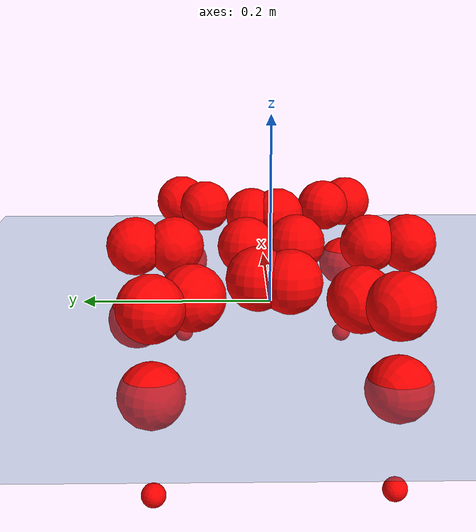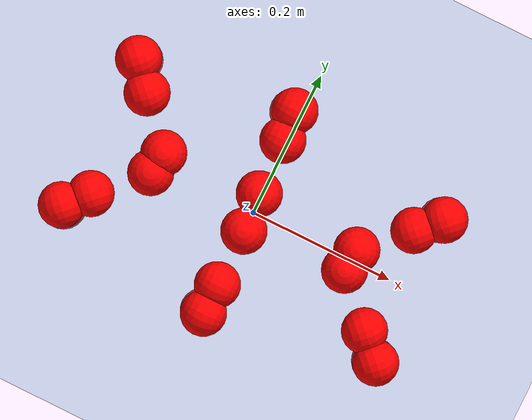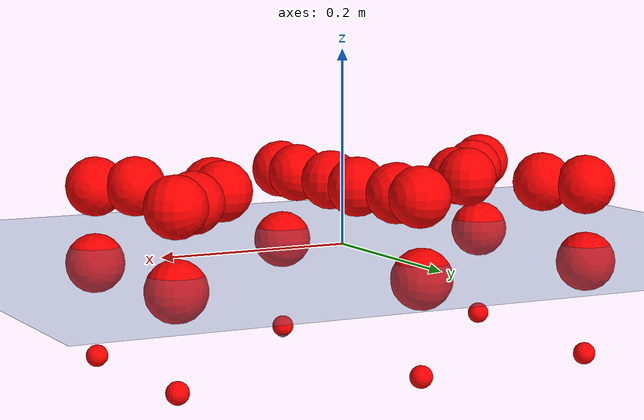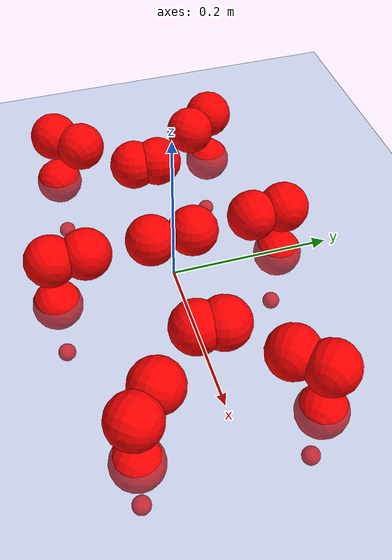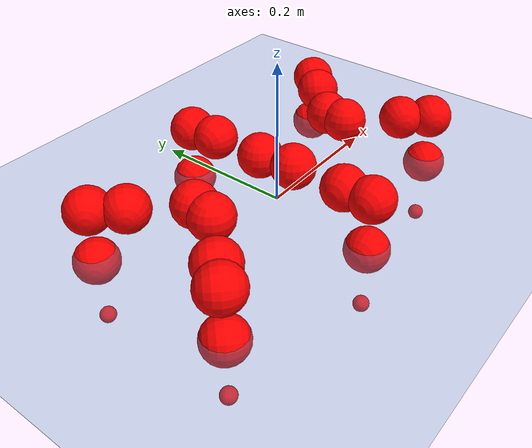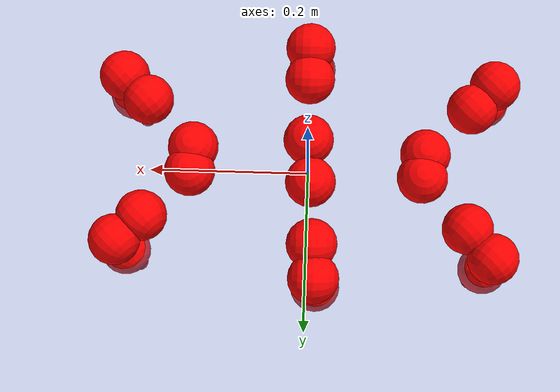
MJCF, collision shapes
<mujoco model="Golem">
  <compiler angle="radian" assetdir="assets" balanceinertia="true" inertiafromgeom="false"/>

  <option timestep="0.005" density="1.2" viscosity="2e-05"/>

  <size nkey="1"/>

  <visual>
    <quality shadowsize="8192"/>
    <map shadowclip="0.5"/>
  </visual>

  <default>
    <default class="/">
      <joint armature="0.01" damping="0.01" frictionloss="0.01"/>
      <geom contype="0" conaffinity="0" group="1" solref="-1000 -80"/>
      <site size="0.01 0.005 0.005" group="5"/>
      <general forcelimited="true" biastype="affine" gainprm="25" biasprm="0 -25 -0.5"/>
      <default class="visual">
        <geom type="mesh" group="2"/>
      </default>
      <default class="collision">
        <geom group="3"/>
      </default>
      <default class="foot">
        <geom size="0.01 0 0" condim="6" group="4" priority="1" solimp="0.015 1 0.01"/>
      </default>
      <default class="reward_collision_sphere">
        <geom group="5" rgba="1 0 0 1"/>
      </default>
    </default>
  </default>

  <asset>
    <texture type="skybox" colorspace="auto" name="//unnamed_texture_0" builtin="gradient" rgb1="0.95 0.95 0.95" rgb2="0.95 0.95 0.95" width="100" height="600"/>
    <texture type="2d" colorspace="auto" name="texplane" builtin="checker" rgb1="0.345 0.575 0.748" rgb2="0.345 0.575 0.748" markrgb="1 1 1" width="512" height="512"/>
    <material name="MatPlane" class="/" texture="texplane" texuniform="true" texrepeat="2 2" specular="0.9"/>
    <mesh name="body" class="/" file="body.stl" scale="0.001 0.001 0.001"/>
    <mesh name="coxa" class="/" file="coxa.stl" scale="0.001 0.001 0.001"/>
    <mesh name="femur" class="/" file="femur.stl" scale="0.001 0.001 0.001"/>
    <mesh name="tibia" class="/" file="tibia.stl" scale="0.001 0.001 0.001"/>
    <mesh name="tarsus" class="/" file="tarsus.stl" scale="0.001 0.001 0.001"/>
  </asset>

  <worldbody>
    <geom name="floor" class="/" size="100 100 0.125" type="plane" group="0" material="MatPlane"/>
    <light name="toplight_shadow" class="/" pos="0 0 5" dir="0.0990148 0.0990148 -0.990148" type="directional" ambient="0.04 0.04 0.04" diffuse="0.55 0.55 0.55" specular="0.12 0.12 0.12"/>
    <light name="toplight_fill" class="/" pos="0 0 5" dir="0.0990148 0.0990148 -0.990148" type="directional" castshadow="false" ambient="0.04 0.04 0.04" diffuse="0.3 0.3 0.3" specular="0.08 0.08 0.08"/>
    <body name="trunk" pos="-0.000150404 8.95235e-05 -0.00105267" quat="0.999999 -0.000103296 0.000245758 -0.00127578">
      <inertial pos="-0.000612099 -0.000879668 -0.00300232" quat="1 -0.000350835 -0.000267071 0.000503979" mass="1.71709" diaginertia="0.00573158 9.71267e-05 0.0100128"/>
      <joint name="//unnamed_joint_0" type="free"/>
      <geom name="//unnamed_geom_1" class="/" pos="0 0 0.0641454" quat="1 0 0 0" type="mesh" rgba="0.9 0.9 0.9 1" mesh="body"/>
      <site name="imu" class="/" pos="0.129455 -0.00406882 0.0990321" size="0.00765229"/>
      <camera name="track" class="/" pos="0 -0.794135 0" quat="0.707107 0.707107 0 0" mode="trackcom"/>
      <camera name="ego_camera" class="/" pos="0.116525 0 0.100227" quat="-0.5 -0.5 0.5 0.5"/>
      <body name="coxa_RR" pos="-0.16101 -0.0318566 0.0631625" quat="0.382322 -0.00117267 -0.000459226 -0.924028">
        <inertial pos="0.000378875 -0.000272025 0.00249567" quat="0.99998 0.00158146 0.00334533 0.00516353" mass="0.0930825" diaginertia="0.00594097 0.000101546 0.0103115"/>
        <joint name="coxa_joint_RR" class="/" pos="0 0 0" axis="0.00184242 -0.00281678 -0.999994" range="-3.17836 3.08801" armature="0.00766838" damping="0.00608141" frictionloss="0.00799401"/>
        <geom name="//unnamed_geom_2" class="/" type="mesh" rgba="0.2 0.2 0.2 1" mesh="coxa"/>
        <geom name="//unnamed_geom_3" class="reward_collision_sphere" size="0.0306092" pos="-0.0268905 0 0"/>
        <body name="femur_RR" pos="0.0550873 0.00148209 -0.000239284" quat="0.499791 -0.500031 0.500373 0.499805">
          <inertial pos="-0.000165852 -0.000526367 0.00120482" quat="0.999998 0.0017752 -0.000422544 -0.00010374" mass="0.0899735" diaginertia="0.0057769 9.89896e-05 0.0101999"/>
          <joint name="femur_joint_RR" class="/" pos="0 0 0" axis="-0.00155579 -0.00163795 -0.999997" range="-3.08962 3.14803" armature="0.00671935" damping="0" frictionloss="0.00800476"/>
          <geom name="//unnamed_geom_4" class="/" type="mesh" rgba="0.9 0.9 0.9 1" mesh="femur"/>
          <geom name="//unnamed_geom_5" class="reward_collision_sphere" size="0.0306092"/>
          <body name="tibia_RR" pos="-0.00236213 -0.0410617 0.00161914" quat="0.000201215 1 0.000769477 5.72452e-05">
            <inertial pos="0.00211918 0.00121783 8.09899e-05" quat="0.999999 -0.00107788 -8.529e-05 -0.00101746" mass="0.0920031" diaginertia="0.00584841 9.90042e-05 0.00983137"/>
            <joint name="tibia_joint_RR" class="/" pos="0 0 0" axis="0.0106265 -0.00597618 0.999926" range="-3.08842 3.14823" armature="0.00688975" damping="0" frictionloss="0.00790717"/>
            <geom name="//unnamed_geom_6" class="/" type="mesh" rgba="0.2 0.2 0.2 1" mesh="tibia"/>
            <geom name="//unnamed_geom_7" class="reward_collision_sphere" size="0.0306092"/>
            <body name="tarsus_RR" pos="0.076168 0.00136493 -0.00145803" quat="1 0.000179224 0.000125198 7.87896e-05">
              <inertial pos="0.0534399 0.00109082 -0.00118216" quat="0.498669 0.501048 0.499182 0.501096" mass="0.0907787" diaginertia="0.00584508 9.84117e-05 0.0103206"/>
              <joint name="tarsus_joint_RR" class="/" pos="0 0 0" axis="-0.00572247 0.00722795 0.999958" range="-3.14003 3.14937" armature="0.00813397" damping="0" frictionloss="0.00732146"/>
              <geom name="//unnamed_geom_8" class="/" type="mesh" rgba="0.9 0.9 0.9 1" mesh="tarsus"/>
              <geom name="foot_1" class="foot" size="0.00735909" pos="0.100391 0 0" quat="0 -0.707107 0 0.707107"/>
              <geom name="//unnamed_geom_10" class="reward_collision_sphere" size="0.0306092"/>
              <geom name="//unnamed_geom_11" class="reward_collision_sphere" size="0.0114784" pos="0.0963575 0 0"/>
              <site name="foot_1" class="foot" pos="0.100391 0 0" quat="0 -0.707107 0 0.707107" size="0.00765229"/>
            </body>
          </body>
        </body>
      </body>
      <body name="coxa_RM" pos="-0.00016429 -0.0536877 0.0646771" quat="0.706773 -0.000548162 0.00103021 -0.70744">
        <inertial pos="0.000585587 -0.00223809 0.000896606" quat="0.999999 0.000498928 -0.00133731 -0.000416936" mass="0.0880865" diaginertia="0.0056717 9.92617e-05 0.010192"/>
        <joint name="coxa_joint_RM" class="/" pos="0 0 0" axis="0.00768203 -0.0104285 -0.999916" range="-3.13591 3.18118" armature="0.00863273" damping="0" frictionloss="0.00703497"/>
        <geom name="//unnamed_geom_12" class="/" type="mesh" rgba="0.2 0.2 0.2 1" mesh="coxa"/>
        <geom name="//unnamed_geom_13" class="reward_collision_sphere" size="0.0306092" pos="-0.0268905 0 0"/>
        <body name="femur_RM" pos="0.0506938 0.000476673 -0.000220312" quat="0.500144 -0.500004 0.500054 0.499798">
          <inertial pos="0.00114735 -0.00123013 3.61157e-05" quat="0.999986 0.00171844 0.00493385 -0.000579147" mass="0.091475" diaginertia="0.00572406 0.000101212 0.0103637"/>
          <joint name="femur_joint_RM" class="/" pos="0 0 0" axis="-0.00237023 0.00135116 -0.999996" range="-3.14485 3.12737" armature="0.00745815" damping="0.00753242" frictionloss="0.00818703"/>
          <geom name="//unnamed_geom_14" class="/" type="mesh" rgba="0.9 0.9 0.9 1" mesh="femur"/>
          <geom name="//unnamed_geom_15" class="reward_collision_sphere" size="0.0306092"/>
          <body name="tibia_RM" pos="-0.000303524 -0.0409038 0.000273512" quat="9.28105e-05 1 -6.71351e-05 -6.95299e-05">
            <inertial pos="-0.000359344 -0.00189932 -0.00239925" quat="0.999936 -0.00480539 -0.00921733 0.00447091" mass="0.0895218" diaginertia="0.00599653 9.98602e-05 0.0104459"/>
            <joint name="tibia_joint_RM" class="/" pos="0 0 0" axis="0.000295027 -0.00109555 0.999999" stiffness="0.000236153" range="-3.15689 3.14305" armature="0.00852437" damping="0.00283404" frictionloss="0.00864842"/>
            <geom name="//unnamed_geom_16" class="/" type="mesh" rgba="0.2 0.2 0.2 1" mesh="tibia"/>
            <geom name="//unnamed_geom_17" class="reward_collision_sphere" size="0.0306092"/>
            <body name="tarsus_RM" pos="0.077621 0.000237242 0.00172688" quat="1 8.09918e-05 4.27974e-05 0.000139821">
              <inertial pos="0.0553088 0.00103925 0.000301236" quat="0.49852 0.505228 0.49536 0.50084" mass="0.0886338" diaginertia="0.00580344 9.84602e-05 0.00995977"/>
              <joint name="tarsus_joint_RM" class="/" pos="0 0 0" axis="-0.000322869 0.000491233 1" range="-3.08826 3.14297" armature="0.00869836" damping="0.00113777" frictionloss="0.00786093"/>
              <geom name="//unnamed_geom_18" class="/" type="mesh" rgba="0.9 0.9 0.9 1" mesh="tarsus"/>
              <geom name="foot_2" class="foot" size="0.00841427" pos="0.100391 0 0" quat="0 -0.707107 0 0.707107"/>
              <geom name="//unnamed_geom_20" class="reward_collision_sphere" size="0.0306092"/>
              <geom name="//unnamed_geom_21" class="reward_collision_sphere" size="0.0114784" pos="0.0963575 0 0"/>
              <site name="foot_2" class="foot" pos="0.100391 0 0" quat="0 -0.707107 0 0.707107" size="0.00765229"/>
            </body>
          </body>
        </body>
      </body>
      <body name="coxa_RF" pos="0.158222 -0.0327753 0.0657263" quat="0.923918 0.000132523 -0.000141341 -0.382591">
        <inertial pos="-0.00146571 -0.00272176 0.00159197" quat="0.999967 0.000538423 -0.00432141 -0.00680265" mass="0.0903724" diaginertia="0.00587799 9.71648e-05 0.0100865"/>
        <joint name="coxa_joint_RF" class="/" pos="0 0 0" axis="0.00126129 -0.00202228 -0.999997" range="-3.13412 3.18861" armature="0.00725179" damping="0" frictionloss="0.00777545"/>
        <geom name="//unnamed_geom_22" class="/" type="mesh" rgba="0.2 0.2 0.2 1" mesh="coxa"/>
        <geom name="//unnamed_geom_23" class="reward_collision_sphere" size="0.0306092" pos="-0.0268905 0 0"/>
        <body name="femur_RF" pos="0.0558807 -0.000422659 -0.00165102" quat="0.499684 -0.499564 0.499725 0.501025">
          <inertial pos="0.00070231 -0.00202876 0.00258218" quat="0.999918 0.0104683 -0.00603684 0.00416191" mass="0.0909902" diaginertia="0.00571811 9.57339e-05 0.0102625"/>
          <joint name="femur_joint_RF" class="/" pos="0 0 0" axis="-0.00131634 0.00297515 -0.999995" range="-3.10962 3.13738" armature="0.00744944" damping="0" frictionloss="0.00670775"/>
          <geom name="//unnamed_geom_24" class="/" type="mesh" rgba="0.9 0.9 0.9 1" mesh="femur"/>
          <geom name="//unnamed_geom_25" class="reward_collision_sphere" size="0.0306092"/>
          <body name="tibia_RF" pos="0.00161787 -0.0441967 0.000610491" quat="5.08725e-05 1 0.000234762 -0.000917054">
            <inertial pos="-0.000356711 0.00103044 0.000502628" quat="0.999976 -0.00467151 0.00337882 -0.00395682" mass="0.090322" diaginertia="0.00583879 9.97326e-05 0.010366"/>
            <joint name="tibia_joint_RF" class="/" pos="0 0 0" axis="-0.00327944 0.00977366 0.999947" range="-3.11756 3.13733" armature="0.00791268" damping="0.00352496" frictionloss="0.00762097"/>
            <geom name="//unnamed_geom_26" class="/" type="mesh" rgba="0.2 0.2 0.2 1" mesh="tibia"/>
            <geom name="//unnamed_geom_27" class="reward_collision_sphere" size="0.0306092"/>
            <body name="tarsus_RF" pos="0.0787591 0.00125698 -0.000571684" quat="0.999999 0.00112232 -0.000380832 -0.000477691">
              <inertial pos="0.0512171 -0.000293714 0.00260101" quat="0.503117 0.493443 0.498618 0.504744" mass="0.0860404" diaginertia="0.00577702 9.62883e-05 0.00985519"/>
              <joint name="tarsus_joint_RF" class="/" pos="0 0 0" axis="0.0115311 0.00938202 0.999889" range="-3.08837 3.11655" armature="0.00767467" damping="0" frictionloss="0.00818126"/>
              <geom name="//unnamed_geom_28" class="/" type="mesh" rgba="0.9 0.9 0.9 1" mesh="tarsus"/>
              <geom name="foot_3" class="foot" size="0.00744416" pos="0.100391 0 0" quat="0 -0.707107 0 0.707107"/>
              <geom name="//unnamed_geom_30" class="reward_collision_sphere" size="0.0306092"/>
              <geom name="//unnamed_geom_31" class="reward_collision_sphere" size="0.0114784" pos="0.0963575 0 0"/>
              <site name="foot_3" class="foot" pos="0.100391 0 0" quat="0 -0.707107 0 0.707107" size="0.00765229"/>
            </body>
          </body>
        </body>
      </body>
      <body name="coxa_LR" pos="-0.157216 0.03619 0.0651038" quat="0.38194 3.29686e-05 -0.000979859 0.924187">
        <inertial pos="0.00279245 0.000420349 -9.94777e-05" quat="0.999955 0.00586331 0.00569931 0.00486503" mass="0.0885014" diaginertia="0.00571664 9.78397e-05 0.0100245"/>
        <joint name="coxa_joint_LR" class="/" pos="0 0 0" axis="-0.0104079 -0.00271336 -0.999942" range="-3.11843 3.14234" armature="0.00780206" damping="0.00794383" frictionloss="0.00759618"/>
        <geom name="//unnamed_geom_32" class="/" type="mesh" rgba="0.2 0.2 0.2 1" mesh="coxa"/>
        <geom name="//unnamed_geom_33" class="reward_collision_sphere" size="0.0306092" pos="-0.0268905 0 0"/>
        <body name="femur_LR" pos="0.0539403 -0.00426455 -0.00203896" quat="0.498922 -0.50075 0.499987 0.500339">
          <inertial pos="-0.00098632 5.72678e-05 0.000565113" quat="1 0.000459517 -3.07874e-05 0.000820356" mass="0.0901462" diaginertia="0.00576551 9.82812e-05 0.0101"/>
          <joint name="femur_joint_LR" class="/" pos="0 0 0" axis="-0.000251994 1.83362e-06 1" range="-3.13558 3.191" armature="0.00759074" damping="0" frictionloss="0.00864983"/>
          <geom name="//unnamed_geom_34" class="/" type="mesh" rgba="0.9 0.9 0.9 1" mesh="femur"/>
          <geom name="//unnamed_geom_35" class="reward_collision_sphere" size="0.0306092"/>
          <body name="tibia_LR" pos="0.000825375 -0.0457042 -0.00386426" quat="0.000151514 1 -9.30854e-05 4.23417e-05">
            <inertial pos="-0.000674184 -0.00139891 0.0015656" quat="0.999987 0.00223198 -0.00349515 -0.00313045" mass="0.0900706" diaginertia="0.0058459 0.000101765 0.010217"/>
            <joint name="tibia_joint_LR" class="/" pos="0 0 0" axis="-0.000775424 -0.00151254 -0.999999" range="-3.15887 3.09144" armature="0.00670768" damping="0.000419865" frictionloss="0.00748861"/>
            <geom name="//unnamed_geom_36" class="/" type="mesh" rgba="0.2 0.2 0.2 1" mesh="tibia"/>
            <geom name="//unnamed_geom_37" class="reward_collision_sphere" size="0.0306092"/>
            <body name="tarsus_LR" pos="0.0795042 0.00140714 -0.000243248" quat="1 0.000266135 0.000565168 9.19503e-05">
              <inertial pos="0.0549487 0.000141044 0.000783096" quat="0.499831 0.499867 0.502048 0.498246" mass="0.0881531" diaginertia="0.00572431 9.80772e-05 0.010035"/>
              <joint name="tarsus_joint_LR" class="/" pos="0 0 0" axis="-0.000309865 -0.000244651 -1" range="-3.08896 3.13756" armature="0.00775364" damping="0" frictionloss="0.00744504"/>
              <geom name="//unnamed_geom_38" class="/" type="mesh" rgba="0.9 0.9 0.9 1" mesh="tarsus"/>
              <geom name="foot_4" class="foot" size="0.00698061" pos="0.100391 0 0" quat="0.707107 0 -0.707107 0"/>
              <geom name="//unnamed_geom_40" class="reward_collision_sphere" size="0.0306092"/>
              <geom name="//unnamed_geom_41" class="reward_collision_sphere" size="0.0114784" pos="0.0963575 0 0"/>
              <site name="foot_4" class="foot" pos="0.100391 0 0" quat="0.707107 0 -0.707107 0" size="0.00765229"/>
            </body>
          </body>
        </body>
      </body>
      <body name="coxa_LM" pos="-0.0039182 0.0521986 0.0629837" quat="0.70626 0.000421231 -0.000762177 0.707952">
        <inertial pos="0.000817821 6.24796e-05 0.00183617" quat="1 -8.23381e-05 -0.00025579 0.000389491" mass="0.0934093" diaginertia="0.00616865 0.000101856 0.0104321"/>
        <joint name="coxa_joint_LM" class="/" pos="0 0 0" axis="-0.00149649 0.00117701 -0.999998" stiffness="0.00585892" range="-3.18091 3.15697" armature="0.00707326" damping="0.00641025" frictionloss="0.00840364"/>
        <geom name="//unnamed_geom_42" class="/" type="mesh" rgba="0.2 0.2 0.2 1" mesh="coxa"/>
        <geom name="//unnamed_geom_43" class="reward_collision_sphere" size="0.0306092" pos="-0.0268905 0 0"/>
        <body name="femur_LM" pos="0.0487292 0.00339151 0.00138284" quat="0.500012 -0.499951 0.499997 0.500041">
          <inertial pos="0.000185383 -0.00164753 0.000572319" quat="0.99999 -0.0031875 -0.00272167 -0.00125121" mass="0.0849238" diaginertia="0.00566618 9.60679e-05 0.00985378"/>
          <joint name="femur_joint_LM" class="/" pos="0 0 0" axis="-0.00459013 0.00129108 0.999989" range="-3.16057 3.13574" armature="0.00750896" damping="0" frictionloss="0.00808469"/>
          <geom name="//unnamed_geom_44" class="/" type="mesh" rgba="0.9 0.9 0.9 1" mesh="femur"/>
          <geom name="//unnamed_geom_45" class="reward_collision_sphere" size="0.0306092"/>
          <body name="tibia_LM" pos="-0.000405037 -0.0410455 0.0028797" quat="-0.000151742 1 -1.8134e-05 3.31252e-05">
            <inertial pos="-0.00255358 0.000745882 -0.0002505" quat="1 -0.000292066 -0.000125204 0.000203019" mass="0.0907261" diaginertia="0.00556644 9.80155e-05 0.0100093"/>
            <joint name="tibia_joint_LM" class="/" pos="0 0 0" axis="0.000954472 0.00138193 -0.999999" range="-3.1057 3.14034" armature="0.00772257" damping="0.00364876" frictionloss="0.00739923"/>
            <geom name="//unnamed_geom_46" class="/" type="mesh" rgba="0.2 0.2 0.2 1" mesh="tibia"/>
            <geom name="//unnamed_geom_47" class="reward_collision_sphere" size="0.0306092"/>
            <body name="tarsus_LM" pos="0.0802271 6.14627e-05 -0.0024255" quat="1 -9.72379e-05 -0.000234579 0.000135571">
              <inertial pos="0.0534205 0.000730637 -0.000128836" quat="0.499978 0.50005 0.500359 0.499612" mass="0.0875846" diaginertia="0.00574128 9.7735e-05 0.0102842"/>
              <joint name="tarsus_joint_LM" class="/" pos="0 0 0" axis="-0.00328057 -0.00711 -0.999969" range="-3.15762 3.10582" armature="0.0076304" damping="0.0112981" frictionloss="0.00685912"/>
              <geom name="//unnamed_geom_48" class="/" type="mesh" rgba="0.9 0.9 0.9 1" mesh="tarsus"/>
              <geom name="foot_5" class="foot" size="0.00748205" pos="0.100391 0 0" quat="0.707107 0 -0.707107 0"/>
              <geom name="//unnamed_geom_50" class="reward_collision_sphere" size="0.0306092"/>
              <geom name="//unnamed_geom_51" class="reward_collision_sphere" size="0.0114784" pos="0.0963575 0 0"/>
              <site name="foot_5" class="foot" pos="0.100391 0 0" quat="0.707107 0 -0.707107 0" size="0.00765229"/>
            </body>
          </body>
        </body>
      </body>
      <body name="coxa_LF" pos="0.160809 0.0355066 0.0655034" quat="0.923858 0.000203095 0.000180407 0.382735">
        <inertial pos="0.000456798 -0.0014461 0.000210008" quat="0.999986 -0.00396631 0.00077215 -0.00337961" mass="0.0879363" diaginertia="0.00563702 9.36797e-05 0.00989138"/>
        <joint name="coxa_joint_LF" class="/" pos="0 0 0" axis="-0.00560169 -0.00690656 -0.99996" range="-3.16764 3.15141" armature="0.00750888" damping="0" frictionloss="0.00779374"/>
        <geom name="//unnamed_geom_52" class="/" type="mesh" rgba="0.2 0.2 0.2 1" mesh="coxa"/>
        <geom name="//unnamed_geom_53" class="reward_collision_sphere" size="0.0306092" pos="-0.0268905 0 0"/>
        <body name="femur_LF" pos="0.0513994 0.000718084 -0.00186608" quat="0.500067 -0.500283 0.499617 0.500034">
          <inertial pos="-0.000624692 0.000785845 0.000416843" quat="0.999915 0.000754838 -0.0105783 0.0075905" mass="0.0898328" diaginertia="0.00586932 9.58956e-05 0.0100198"/>
          <joint name="femur_joint_LF" class="/" pos="0 0 0" axis="0.00436676 0.00664518 0.999968" stiffness="0.000355039" range="-3.12813 3.13912" armature="0.00755571" damping="0.00312148" frictionloss="0.00665658"/>
          <geom name="//unnamed_geom_54" class="/" type="mesh" rgba="0.9 0.9 0.9 1" mesh="femur"/>
          <geom name="//unnamed_geom_55" class="reward_collision_sphere" size="0.0306092"/>
          <body name="tibia_LF" pos="-0.0009543 -0.0423168 0.000175318" quat="-0.000112198 1 -1.74192e-05 0.000225246">
            <inertial pos="-0.000672831 -0.00021578 0.000726247" quat="0.999999 -0.000355928 0.000644466 -0.0011226" mass="0.0909566" diaginertia="0.00585428 9.8312e-05 0.0100546"/>
            <joint name="tibia_joint_LF" class="/" pos="0 0 0" axis="0.00227929 -0.00719398 -0.999972" range="-3.19169 3.14827" armature="0.00780615" damping="0.00649856" frictionloss="0.00714634"/>
            <geom name="//unnamed_geom_56" class="/" type="mesh" rgba="0.2 0.2 0.2 1" mesh="tibia"/>
            <geom name="//unnamed_geom_57" class="reward_collision_sphere" size="0.0306092"/>
            <body name="tarsus_LF" pos="0.079125 -0.000209422 0.00064088" quat="1 0.000106167 6.67703e-05 0.000117029">
              <inertial pos="0.0548913 8.77016e-05 0.00276163" quat="0.500465 0.499288 0.499834 0.500412" mass="0.0912214" diaginertia="0.00575656 9.92173e-05 0.0101742"/>
              <joint name="tarsus_joint_LF" class="/" pos="0 0 0" axis="-0.00968427 0.00575116 -0.999937" stiffness="0.030811" range="-3.13652 3.15278" armature="0.00759981" damping="0.0253273" frictionloss="0.00750786"/>
              <geom name="//unnamed_geom_58" class="/" type="mesh" rgba="0.9 0.9 0.9 1" mesh="tarsus"/>
              <geom name="foot_6" class="foot" size="0.00770001" pos="0.100391 0 0" quat="0.707107 0 -0.707107 0"/>
              <geom name="//unnamed_geom_60" class="reward_collision_sphere" size="0.0306092"/>
              <geom name="//unnamed_geom_61" class="reward_collision_sphere" size="0.0114784" pos="0.0963575 0 0"/>
              <site name="foot_6" class="foot" pos="0.100391 0 0" quat="0.707107 0 -0.707107 0" size="0.00765229"/>
            </body>
          </body>
        </body>
      </body>
    </body>
  </worldbody>

  <contact>
    <pair class="/" geom1="floor" geom2="foot_1" name="//unnamed_contact_0"/>
    <pair class="/" geom1="floor" geom2="foot_2" name="//unnamed_contact_1"/>
    <pair class="/" geom1="floor" geom2="foot_3" name="//unnamed_contact_2"/>
    <pair class="/" geom1="floor" geom2="foot_4" name="//unnamed_contact_3"/>
    <pair class="/" geom1="floor" geom2="foot_5" name="//unnamed_contact_4"/>
    <pair class="/" geom1="floor" geom2="foot_6" name="//unnamed_contact_5"/>
  </contact>

  <actuator>
    <general name="coxa_joint_RR" class="/" joint="coxa_joint_RR" forcerange="-5.92839 5.92839" gainprm="17.4172" biasprm="0 -17.4172 -0.372194"/>
    <general name="femur_joint_RR" class="/" joint="femur_joint_RR" forcerange="-5.53702 5.53702" gainprm="17.4172" biasprm="0 -17.4172 -0.372194"/>
    <general name="tibia_joint_RR" class="/" joint="tibia_joint_RR" forcerange="-5.8085 5.8085" gainprm="17.4172" biasprm="0 -17.4172 -0.372194"/>
    <general name="tarsus_joint_RR" class="/" joint="tarsus_joint_RR" forcerange="-5.39829 5.39829" gainprm="17.4172" biasprm="0 -17.4172 -0.372194"/>
    <general name="coxa_joint_RM" class="/" joint="coxa_joint_RM" forcerange="-5.94247 5.94247" gainprm="17.4172" biasprm="0 -17.4172 -0.372194"/>
    <general name="femur_joint_RM" class="/" joint="femur_joint_RM" forcerange="-6.04036 6.04036" gainprm="17.4172" biasprm="0 -17.4172 -0.372194"/>
    <general name="tibia_joint_RM" class="/" joint="tibia_joint_RM" forcerange="-5.6121 5.6121" gainprm="17.4172" biasprm="0 -17.4172 -0.372194"/>
    <general name="tarsus_joint_RM" class="/" joint="tarsus_joint_RM" forcerange="-6.13248 6.13248" gainprm="17.4172" biasprm="0 -17.4172 -0.372194"/>
    <general name="coxa_joint_RF" class="/" joint="coxa_joint_RF" forcerange="-6.10014 6.10014" gainprm="17.4172" biasprm="0 -17.4172 -0.372194"/>
    <general name="femur_joint_RF" class="/" joint="femur_joint_RF" forcerange="-5.07124 5.07124" gainprm="17.4172" biasprm="0 -17.4172 -0.372194"/>
    <general name="tibia_joint_RF" class="/" joint="tibia_joint_RF" forcerange="-5.66016 5.66016" gainprm="17.4172" biasprm="0 -17.4172 -0.372194"/>
    <general name="tarsus_joint_RF" class="/" joint="tarsus_joint_RF" forcerange="-5.69608 5.69608" gainprm="17.4172" biasprm="0 -17.4172 -0.372194"/>
    <general name="coxa_joint_LR" class="/" joint="coxa_joint_LR" forcerange="-5.62952 5.62952" gainprm="17.4172" biasprm="0 -17.4172 -0.372194"/>
    <general name="femur_joint_LR" class="/" joint="femur_joint_LR" forcerange="-5.28367 5.28367" gainprm="17.4172" biasprm="0 -17.4172 -0.372194"/>
    <general name="tibia_joint_LR" class="/" joint="tibia_joint_LR" forcerange="-5.63712 5.63712" gainprm="17.4172" biasprm="0 -17.4172 -0.372194"/>
    <general name="tarsus_joint_LR" class="/" joint="tarsus_joint_LR" forcerange="-5.65582 5.65582" gainprm="17.4172" biasprm="0 -17.4172 -0.372194"/>
    <general name="coxa_joint_LM" class="/" joint="coxa_joint_LM" forcerange="-5.603 5.603" gainprm="17.4172" biasprm="0 -17.4172 -0.372194"/>
    <general name="femur_joint_LM" class="/" joint="femur_joint_LM" forcerange="-5.56194 5.56194" gainprm="17.4172" biasprm="0 -17.4172 -0.372194"/>
    <general name="tibia_joint_LM" class="/" joint="tibia_joint_LM" forcerange="-5.04232 5.04232" gainprm="17.4172" biasprm="0 -17.4172 -0.372194"/>
    <general name="tarsus_joint_LM" class="/" joint="tarsus_joint_LM" forcerange="-5.56999 5.56999" gainprm="17.4172" biasprm="0 -17.4172 -0.372194"/>
    <general name="coxa_joint_LF" class="/" joint="coxa_joint_LF" forcerange="-6.0462 6.0462" gainprm="17.4172" biasprm="0 -17.4172 -0.372194"/>
    <general name="femur_joint_LF" class="/" joint="femur_joint_LF" forcerange="-6.06691 6.06691" gainprm="17.4172" biasprm="0 -17.4172 -0.372194"/>
    <general name="tibia_joint_LF" class="/" joint="tibia_joint_LF" forcerange="-5.56578 5.56578" gainprm="17.4172" biasprm="0 -17.4172 -0.372194"/>
    <general name="tarsus_joint_LF" class="/" joint="tarsus_joint_LF" forcerange="-5.80134 5.80134" gainprm="17.4172" biasprm="0 -17.4172 -0.372194"/>
  </actuator>

  <sensor>
    <gyro site="imu" name="imu_angular_velocity"/>
    <velocimeter site="imu" name="imu_linear_velocity"/>
    <framelinvel objtype="site" objname="foot_1" name="foot_1_global_linear_velocity"/>
    <framelinvel objtype="site" objname="foot_2" name="foot_2_global_linear_velocity"/>
    <framelinvel objtype="site" objname="foot_3" name="foot_3_global_linear_velocity"/>
    <framelinvel objtype="site" objname="foot_4" name="foot_4_global_linear_velocity"/>
    <framelinvel objtype="site" objname="foot_5" name="foot_5_global_linear_velocity"/>
    <framelinvel objtype="site" objname="foot_6" name="foot_6_global_linear_velocity"/>
  </sensor>

  <keyframe>
    <key name="home" qpos="0 0 0.1457 1 0 0 0 0 0 0 0 0 0 0 0 0 0 0 0 0 0 0 0 0 0 0 0 0 0 0 0"/>
  </keyframe>
</mujoco>
